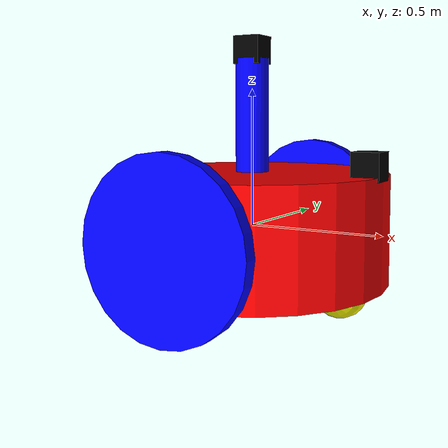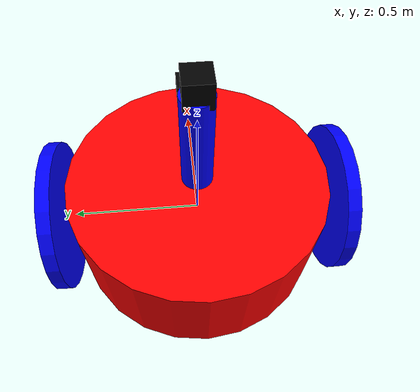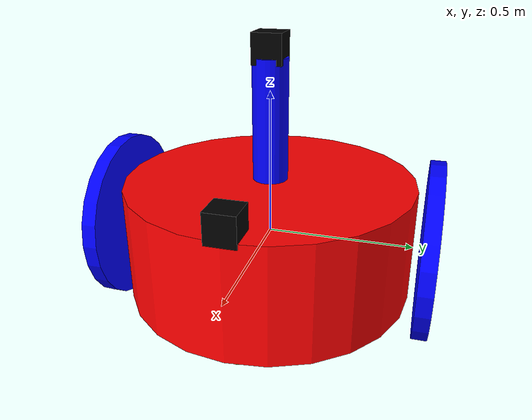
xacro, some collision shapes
<robot name="diffrobot" xmlns:xacro="http://www.ros.org/wiki/xacro">

<xacro:include filename="$(find uvc_robot)/urdf/diffrobot.gazebo"/>

<link name="robot_footprint">
</link>

<joint name="robot_footprint_joint" type="fixed">
    <parent link ="robot_footprint"/>
    <child link ="base_link"/>
</joint>

<link name="base_link">
    <inertial>
        <origin xyz="0.0 0.0 0.0" rpy="0.0 0.0 0.0"/>
        <mass value="10.0"/>
        <inertia ixx="0.0" ixy="0.0" ixz="0.0" iyy="0.0" iyz="0.0" izz="0.0"/>
    </inertial>
    <visual name="base_link_visual">
        <geometry>
           <cylinder radius="0.5" length="0.4"/>
        </geometry>
        <material name="">
            <color rgba="1.0 0.0 0.0 1.0"/>
            <texture filename=""/>
        </material>
    </visual>
    <collision>
        <origin xyz="0.0 0.0 0.0" rpy="0.0 0.0 0.0"/>
        <geometry>
           <cylinder radius="0.5" length="0.45"/>
        </geometry>
    </collision>
</link>

<link name="cylinder_link">
    <inertial>
        <origin xyz="0.0 0.0 0.0" rpy="0.0 0.0 0.0"/>
        <mass value="1.0"/>
        <inertia ixx="0.0" ixy="0.0" ixz="0.0" iyy="0.0" iyz="0.0" izz="0.0"/>
    </inertial>
    <visual name="cylinder_link_visual">
        <origin xyz="0.0 0.0 0.0" rpy="0.0 0.0 0.0"/>
        <geometry>
            <cylinder radius="0.06" length="0.5"/>
        </geometry>
        <material name="">
            <color rgba="0.0 0.0 1.0 1.0"/>
            <texture filename=""/>
        </material>
    </visual>
    <collision>
        <origin xyz="0.0 0.0 0.0" rpy="0.0 0.0 0.0"/>
        <geometry>
           <cylinder radius="0.06" length="0.5"/>
        </geometry>
    </collision>
</link>

<joint name="cylinder_joint" type="fixed">
    <origin xyz="0.0 0.0 0.36" rpy="0.0 0.0 0.0"/>
    <parent link="base_link"/>
    <child link="cylinder_link"/>
    <axis xyz="0.0 0.0 0.0"/>
    <limit lower="0.0" upper="0.0" effort="0.0" velocity="0.0"/>
</joint>

<link name="left_wheel">
    <inertial>
        <origin xyz="0.0 0.0 0.0" rpy="0.0 0.0 0.0"/>
        <mass value="3.0"/>
        <inertia ixx="1.0" ixy="0.0" ixz="0.0" iyy="1.0" iyz="0.0" izz="1.0"/>
    </inertial>
    <visual name="left_wheel_visual">
        <origin xyz="0.0 0.0 0.0" rpy="0.0 0.0 0.0"/>
        <geometry>
            <cylinder radius="0.3" length="0.05"/>
        </geometry>
        <material name="">
            <color rgba="0.0 0.0 1.0 1.0"/>
            <texture filename=""/>
        </material>
    </visual>
    <collision>
        <origin xyz="0.0 0.0 0.0" rpy="0.0 0.0 0.0"/>
        <geometry>
            <cylinder radius="0.3" length="0.05"/>
        </geometry>
    </collision>
</link>

<joint name="left_wheel_joint" type="continuous">
    <origin xyz="0.0 0.55 0.0" rpy="0.0 1.5707 1.5707"/>
    <parent link="base_link"/>
    <child link="left_wheel"/>
    <axis xyz="0.0 0.0 1.0"/>
    <limit lower="0.0" upper="0.0" effort="0.0" velocity="0.0"/>
</joint>

<link name="right_wheel">
    <inertial>
        <origin xyz="0.0 0.0 0.0" rpy="0.0 0.0 0.0"/>
        <mass value="3.0"/>
        <inertia ixx="1.0" ixy="0.0" ixz="0.0" iyy="1.0" iyz="0.0" izz="1.0"/>
    </inertial>
    <visual name="right_wheel_visual">
        <origin xyz="0.0 0.0 0.0" rpy="0.0 0.0 0.0"/>
        <geometry>
          <cylinder radius="0.3" length="0.05"/>
        </geometry>
        <material name="">
            <color rgba="0.0 0.0 1.0 1.0"/>
            <texture filename=""/>
        </material>
    </visual>
    <collision>
        <origin xyz="0.0 0.0 0.0" rpy="0.0 0.0 0.0"/>
        <geometry>
           <cylinder radius="0.3" length="0.05"/>
        </geometry>
    </collision>
</link>

<joint name="right_wheel_joint" type="continuous">
    <origin xyz="0.0 -0.55 0.0" rpy="0.0 1.5707 1.5707"/>
    <parent link="base_link"/>
    <child link="right_wheel"/>
    <axis xyz="0.0 0.0 1.0"/>
    <limit lower="0.0" upper="0.0" effort="0.0" velocity="0.0"/>
</joint>

<link name="front_caster">
    <inertial>
        <origin xyz="0.0 0.0 0.0" rpy="0.0 0.0 0.0"/>
        <mass value="0.0"/>
        <inertia ixx="0.0" ixy="0.0" ixz="0.0" iyy="0.0" iyz="0.0" izz="0.0"/>
    </inertial>
    <visual name="front_caster_visual">
        <origin xyz="0.0 0.0 0.0" rpy="0.0 0.0 0.0"/>
        <geometry>
             <sphere radius="0.1"/>
        </geometry>
        <material name="">
            <color rgba="1.0 1.0 0.0 1.0"/>
        </material>
    </visual>
    <collision>
        <origin xyz="0.0 0.0 0.0" rpy="0.0 0.0 0.0"/>
        <geometry>
             <sphere radius="0.1"/>
        </geometry>
    </collision>
</link>

<joint name="front_caster_joint" type="fixed">
    <origin xyz="0.35 0.0 -0.197999" rpy="0.0 1.5707 1.5707"/>
    <parent link="base_link"/>
    <child link="front_caster"/>
    <axis xyz="0.0 0.0 0.0"/>
    <limit lower="0.0" upper="0.0" effort="0.0" velocity="0.0"/>
</joint>

<link name="back_caster">
    <inertial>
        <origin xyz="0.0 0.0 0.0" rpy="0.0 0.0 0.0"/>
        <mass value="0.0"/>
        <inertia ixx="0.0" ixy="0.0" ixz="0.0" iyy="0.0" iyz="0.0" izz="0.0"/>
    </inertial>
    <visual name="back_caster_visual">
        <origin xyz="0.0 0.0 0.0" rpy="0.0 0.0 0.0"/>
        <geometry>
             <sphere radius="0.1"/>
        </geometry>
        <material name="">
            <color rgba="1.0 1.0 0.0 1.0"/>
        </material>
    </visual>
    <collision>
        <origin xyz="0.0 0.0 0.0" rpy="0.0 0.0 0.0"/>
        <geometry>
             <sphere radius="0.1"/>
        </geometry>
    </collision>
</link>

<joint name="back_caster_joint" type="fixed">
    <origin xyz="-0.35 0.0 -0.197999" rpy="0.0 1.5707 1.5707"/>
    <parent link="base_link"/>
    <child link="back_caster"/>
    <axis xyz="0.0 0.0 0.0"/>
    <limit lower="0.0" upper="0.0" effort="0.0" velocity="0.0"/>
</joint>

<link name="lidar_link">
    <inertial>
        <origin xyz="0.0 0.0 0.0" rpy="0.0 0.0 0.0"/>
        <mass value="0.1"/>
        <inertia ixx="1.0" ixy="0.0" ixz="0.0" iyy="1.0" iyz="0.0" izz="1.0"/>
    </inertial>
    <visual name="lidar_link_visual">
        <origin xyz="0.0 0.0 0.0" rpy="0.0 0.0 0.0"/>
        <geometry>
       <mesh filename="package://uvc_robot/meshes/lidar_link.STL"/>
          </geometry>
        <material name="">
            <color rgba="0.0 0.0 0.0 1.0"/>
            <texture filename=""/>
        </material>
    </visual>
    <collision>
        <origin xyz="0.0 0.0 0.0" rpy="0.0 0.0 0.0"/>
        <geometry>
            <box size="0.1 0.1 0.1"/>
        </geometry>
    </collision>
</link>

<joint name="lidar_joint" type="fixed">
 <origin xyz="0.45 0.0 0.235" rpy="0.0 0.0 0.0"/>
  <parent link="base_link"/>
    <child link="lidar_link"/>
    <axis xyz="0.0 0.0 0.0"/>
    <limit lower="0.0" upper="0.0" effort="0.0" velocity="0.0"/>
</joint>

    <link name="laser_data_link">

    </link>

    <joint name="laser_data_joint" type="fixed">
        <origin xyz="0.0 0.0 0.0" rpy="0.0 -1.5708 -1.5708"/>
        <parent link="lidar_link"/>
        <child link="laser_data_link"/>
    </joint>

  <!-- Camera -->
  <link name="camera_link">
    <inertial>
        <origin xyz="0.0 0.0 0.0" rpy="0.0 0.0 0.0"/>
        <mass value="0.1"/>
        <inertia ixx="0.0" ixy="0.0" ixz="0.0" iyy="0.0" iyz="0.0" izz="0.0"/>
    </inertial>
    <visual name="camera_link_visual">
        <origin xyz="0.0 0.0 0.0" rpy="0.0 0.0 1.5708"/>
        <geometry>
         <mesh filename="package://uvc_robot/meshes/kinect.dae"/>
          </geometry>
         <material name="">
            <color rgba="0.0 0.0 0.0 1.0"/>
            <texture filename=""/>
        </material>

    </visual>
    <collision>
        <origin xyz="0.0 0.0 0.0" rpy="0.0 0.0 0.0"/>
        <geometry>
            <box size="0.1 0.1 0.1"/>
        </geometry>
    </collision>
</link>
<joint name="camera_joint" type="fixed">
 <origin xyz="0 0.0 0.28" rpy="0 0 0"/>
  <parent link="cylinder_link"/>
    <child link="camera_link"/>
    <axis xyz="0.0 0.0 0.0"/>
    <limit lower="0.0" upper="0.0" effort="0.0" velocity="0.0"/>
</joint>
<link name="camera_link_optical"></link>
  <joint name="camera_optical_joint" type="fixed">
        <parent link="camera_link"/>
        <child link="camera_link_optical"/>
        <origin xyz="0 0 0" rpy="-1.5708  0.0 -1.5708"/>
    </joint>

</robot>
